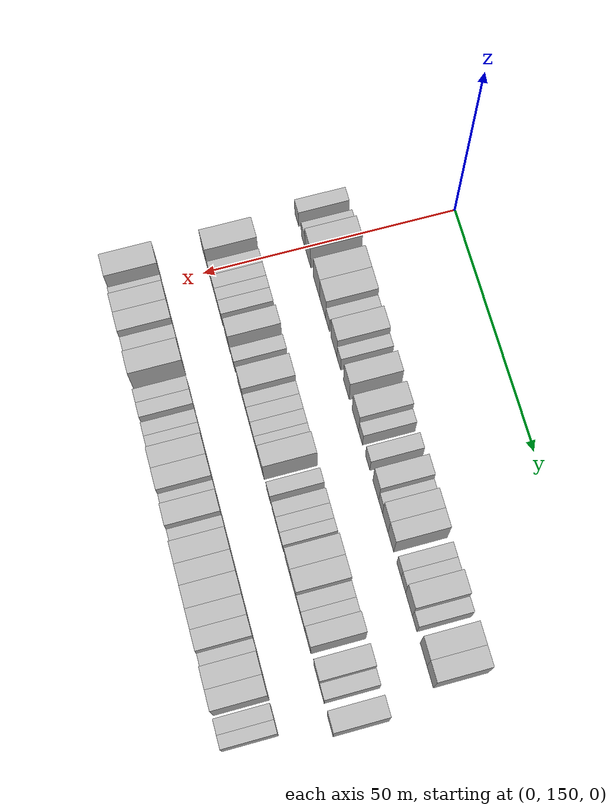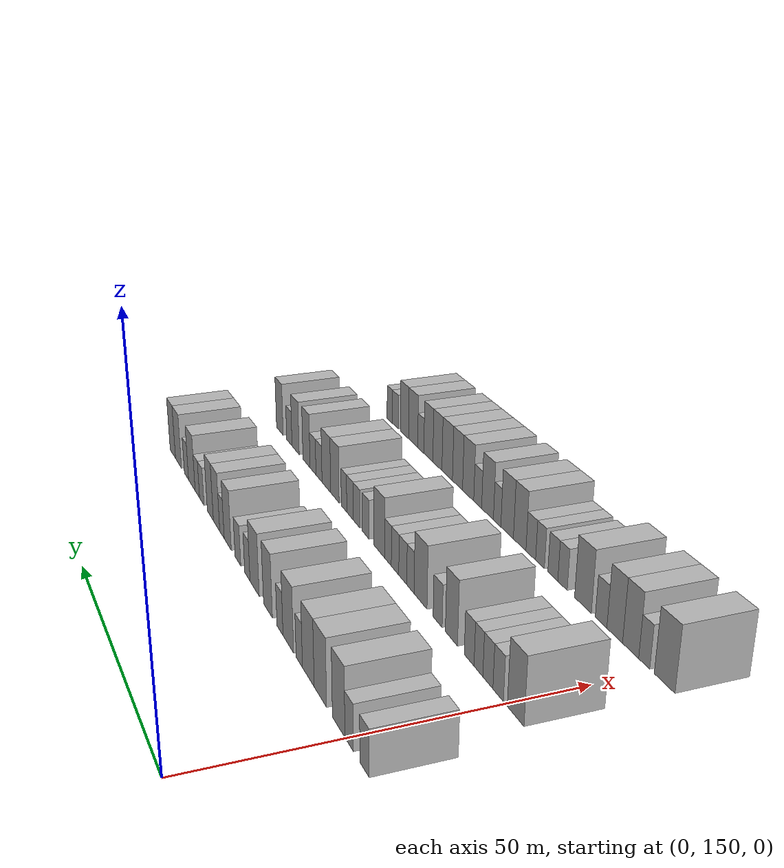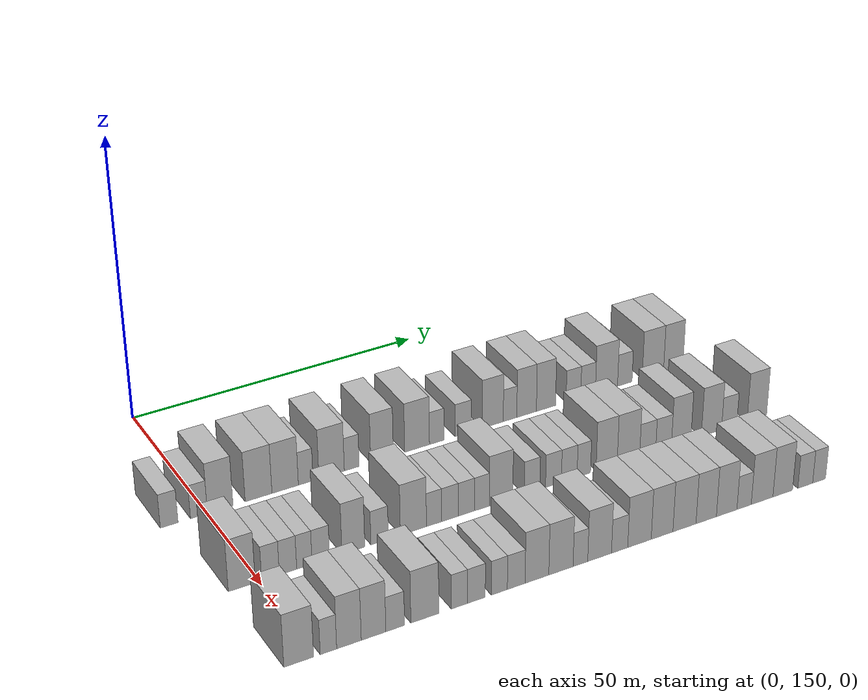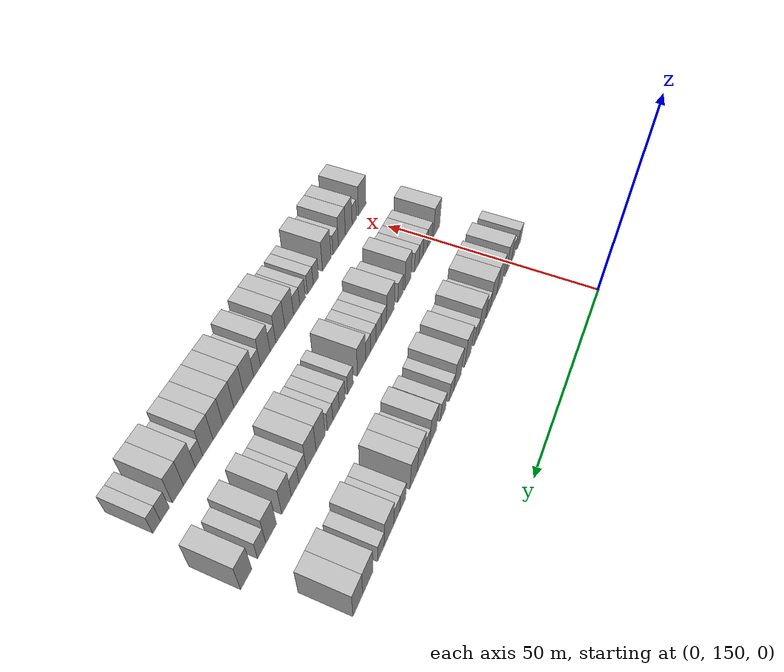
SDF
<sdf version="1.6">
 <world name="default">
  <model name="building_100">
   <static>1</static>
   <pose>25.0000 143.9327 0 0.000000 0.000000 0.000000</pose>
   <link name="link">
    <pose>0 0 3.00 0 0 0</pose>
    <collision name="collision"><geometry><box><size>10.0000 2.8438 6.0000</size></box></geometry></collision>
    <visual name="visual">
     <cast_shadows>0</cast_shadows>
     <geometry><box><size>10.0000 2.8438 6.0000</size></box></geometry>
     <material>
      <script>
       <uri>model://HANNAS_wall/materials/scripts</uri>
       <uri>model://HANNAS_wall/materials/textures</uri>
       <name>vrc/HANNAS_wall</name>
      </script>
     </material>
    </visual>
   </link>
  </model>
  <model name="building_101">
   <static>1</static>
   <pose>25.0000 148.7259 0 0.000000 0.000000 0.000000</pose>
   <link name="link">
    <pose>0 0 3.00 0 0 0</pose>
    <collision name="collision"><geometry><box><size>10.0000 2.7425 6.0000</size></box></geometry></collision>
    <visual name="visual">
     <cast_shadows>0</cast_shadows>
     <geometry><box><size>10.0000 2.7425 6.0000</size></box></geometry>
     <material>
      <script>
       <uri>model://HANNAS_wall/materials/scripts</uri>
       <uri>model://HANNAS_wall/materials/textures</uri>
       <name>vrc/HANNAS_wall</name>
      </script>
     </material>
    </visual>
   </link>
  </model>
  <model name="building_102">
   <static>1</static>
   <pose>25.0000 152.1908 0 0.000000 0.000000 0.000000</pose>
   <link name="link">
    <pose>0 0 4.50 0 0 0</pose>
    <collision name="collision"><geometry><box><size>10.0000 4.1874 9.0000</size></box></geometry></collision>
    <visual name="visual">
     <cast_shadows>0</cast_shadows>
     <geometry><box><size>10.0000 4.1874 9.0000</size></box></geometry>
     <material>
      <script>
       <uri>model://HANNAS_wall/materials/scripts</uri>
       <uri>model://HANNAS_wall/materials/textures</uri>
       <name>vrc/HANNAS_wall</name>
      </script>
     </material>
    </visual>
   </link>
  </model>
  <model name="building_103">
   <static>1</static>
   <pose>25.0000 158.5118 0 0.000000 0.000000 0.000000</pose>
   <link name="link">
    <pose>0 0 4.50 0 0 0</pose>
    <collision name="collision"><geometry><box><size>10.0000 4.4545 9.0000</size></box></geometry></collision>
    <visual name="visual">
     <cast_shadows>0</cast_shadows>
     <geometry><box><size>10.0000 4.4545 9.0000</size></box></geometry>
     <material>
      <script>
       <uri>model://HANNAS_wall/materials/scripts</uri>
       <uri>model://HANNAS_wall/materials/textures</uri>
       <name>vrc/HANNAS_wall</name>
      </script>
     </material>
    </visual>
   </link>
  </model>
  <model name="building_104">
   <static>1</static>
   <pose>25.0000 162.9610 0 0.000000 0.000000 0.000000</pose>
   <link name="link">
    <pose>0 0 4.50 0 0 0</pose>
    <collision name="collision"><geometry><box><size>10.0000 4.4439 9.0000</size></box></geometry></collision>
    <visual name="visual">
     <cast_shadows>0</cast_shadows>
     <geometry><box><size>10.0000 4.4439 9.0000</size></box></geometry>
     <material>
      <script>
       <uri>model://HANNAS_wall/materials/scripts</uri>
       <uri>model://HANNAS_wall/materials/textures</uri>
       <name>vrc/HANNAS_wall</name>
      </script>
     </material>
    </visual>
   </link>
  </model>
  <model name="building_105">
   <static>1</static>
   <pose>25.0000 166.4257 0 0.000000 0.000000 0.000000</pose>
   <link name="link">
    <pose>0 0 3.00 0 0 0</pose>
    <collision name="collision"><geometry><box><size>10.0000 2.4856 6.0000</size></box></geometry></collision>
    <visual name="visual">
     <cast_shadows>0</cast_shadows>
     <geometry><box><size>10.0000 2.4856 6.0000</size></box></geometry>
     <material>
      <script>
       <uri>model://HANNAS_wall/materials/scripts</uri>
       <uri>model://HANNAS_wall/materials/textures</uri>
       <name>vrc/HANNAS_wall</name>
      </script>
     </material>
    </visual>
   </link>
  </model>
  <model name="building_106">
   <static>1</static>
   <pose>25.0000 170.8483 0 0.000000 0.000000 0.000000</pose>
   <link name="link">
    <pose>0 0 4.50 0 0 0</pose>
    <collision name="collision"><geometry><box><size>10.0000 4.3598 9.0000</size></box></geometry></collision>
    <visual name="visual">
     <cast_shadows>0</cast_shadows>
     <geometry><box><size>10.0000 4.3598 9.0000</size></box></geometry>
     <material>
      <script>
       <uri>model://HANNAS_wall/materials/scripts</uri>
       <uri>model://HANNAS_wall/materials/textures</uri>
       <name>vrc/HANNAS_wall</name>
      </script>
     </material>
    </visual>
   </link>
  </model>
  <model name="building_107">
   <static>1</static>
   <pose>25.0000 174.3133 0 0.000000 0.000000 0.000000</pose>
   <link name="link">
    <pose>0 0 3.00 0 0 0</pose>
    <collision name="collision"><geometry><box><size>10.0000 2.5700 6.0000</size></box></geometry></collision>
    <visual name="visual">
     <cast_shadows>0</cast_shadows>
     <geometry><box><size>10.0000 2.5700 6.0000</size></box></geometry>
     <material>
      <script>
       <uri>model://HANNAS_wall/materials/scripts</uri>
       <uri>model://HANNAS_wall/materials/textures</uri>
       <name>vrc/HANNAS_wall</name>
      </script>
     </material>
    </visual>
   </link>
  </model>
  <model name="building_108">
   <static>1</static>
   <pose>25.0000 179.5826 0 0.000000 0.000000 0.000000</pose>
   <link name="link">
    <pose>0 0 4.50 0 0 0</pose>
    <collision name="collision"><geometry><box><size>10.0000 3.9686 9.0000</size></box></geometry></collision>
    <visual name="visual">
     <cast_shadows>0</cast_shadows>
     <geometry><box><size>10.0000 3.9686 9.0000</size></box></geometry>
     <material>
      <script>
       <uri>model://HANNAS_wall/materials/scripts</uri>
       <uri>model://HANNAS_wall/materials/textures</uri>
       <name>vrc/HANNAS_wall</name>
      </script>
     </material>
    </visual>
   </link>
  </model>
  <model name="building_109">
   <static>1</static>
   <pose>25.0000 185.7703 0 0.000000 0.000000 0.000000</pose>
   <link name="link">
    <pose>0 0 4.50 0 0 0</pose>
    <collision name="collision"><geometry><box><size>10.0000 4.4070 9.0000</size></box></geometry></collision>
    <visual name="visual">
     <cast_shadows>0</cast_shadows>
     <geometry><box><size>10.0000 4.4070 9.0000</size></box></geometry>
     <material>
      <script>
       <uri>model://HANNAS_wall/materials/scripts</uri>
       <uri>model://HANNAS_wall/materials/textures</uri>
       <name>vrc/HANNAS_wall</name>
      </script>
     </material>
    </visual>
   </link>
  </model>
  <model name="building_110">
   <static>1</static>
   <pose>25.0000 189.2855 0 0.000000 0.000000 0.000000</pose>
   <link name="link">
    <pose>0 0 3.00 0 0 0</pose>
    <collision name="collision"><geometry><box><size>10.0000 2.6235 6.0000</size></box></geometry></collision>
    <visual name="visual">
     <cast_shadows>0</cast_shadows>
     <geometry><box><size>10.0000 2.6235 6.0000</size></box></geometry>
     <material>
      <script>
       <uri>model://HANNAS_wall/materials/scripts</uri>
       <uri>model://HANNAS_wall/materials/textures</uri>
       <name>vrc/HANNAS_wall</name>
      </script>
     </material>
    </visual>
   </link>
  </model>
  <model name="building_111">
   <static>1</static>
   <pose>25.0000 194.0780 0 0.000000 0.000000 0.000000</pose>
   <link name="link">
    <pose>0 0 3.00 0 0 0</pose>
    <collision name="collision"><geometry><box><size>10.0000 2.9614 6.0000</size></box></geometry></collision>
    <visual name="visual">
     <cast_shadows>0</cast_shadows>
     <geometry><box><size>10.0000 2.9614 6.0000</size></box></geometry>
     <material>
      <script>
       <uri>model://HANNAS_wall/materials/scripts</uri>
       <uri>model://HANNAS_wall/materials/textures</uri>
       <name>vrc/HANNAS_wall</name>
      </script>
     </material>
    </visual>
   </link>
  </model>
  <model name="building_112">
   <static>1</static>
   <pose>25.0000 199.4819 0 0.000000 0.000000 0.000000</pose>
   <link name="link">
    <pose>0 0 4.50 0 0 0</pose>
    <collision name="collision"><geometry><box><size>10.0000 3.8465 9.0000</size></box></geometry></collision>
    <visual name="visual">
     <cast_shadows>0</cast_shadows>
     <geometry><box><size>10.0000 3.8465 9.0000</size></box></geometry>
     <material>
      <script>
       <uri>model://HANNAS_wall/materials/scripts</uri>
       <uri>model://HANNAS_wall/materials/textures</uri>
       <name>vrc/HANNAS_wall</name>
      </script>
     </material>
    </visual>
   </link>
  </model>
  <model name="building_113">
   <static>1</static>
   <pose>25.0000 202.6587 0 0.000000 0.000000 0.000000</pose>
   <link name="link">
    <pose>0 0 3.00 0 0 0</pose>
    <collision name="collision"><geometry><box><size>10.0000 2.5070 6.0000</size></box></geometry></collision>
    <visual name="visual">
     <cast_shadows>0</cast_shadows>
     <geometry><box><size>10.0000 2.5070 6.0000</size></box></geometry>
     <material>
      <script>
       <uri>model://HANNAS_wall/materials/scripts</uri>
       <uri>model://HANNAS_wall/materials/textures</uri>
       <name>vrc/HANNAS_wall</name>
      </script>
     </material>
    </visual>
   </link>
  </model>
  <model name="building_114">
   <static>1</static>
   <pose>25.0000 205.7409 0 0.000000 0.000000 0.000000</pose>
   <link name="link">
    <pose>0 0 4.50 0 0 0</pose>
    <collision name="collision"><geometry><box><size>10.0000 3.6574 9.0000</size></box></geometry></collision>
    <visual name="visual">
     <cast_shadows>0</cast_shadows>
     <geometry><box><size>10.0000 3.6574 9.0000</size></box></geometry>
     <material>
      <script>
       <uri>model://HANNAS_wall/materials/scripts</uri>
       <uri>model://HANNAS_wall/materials/textures</uri>
       <name>vrc/HANNAS_wall</name>
      </script>
     </material>
    </visual>
   </link>
  </model>
  <model name="building_115">
   <static>1</static>
   <pose>25.0000 209.3726 0 0.000000 0.000000 0.000000</pose>
   <link name="link">
    <pose>0 0 4.50 0 0 0</pose>
    <collision name="collision"><geometry><box><size>10.0000 3.6061 9.0000</size></box></geometry></collision>
    <visual name="visual">
     <cast_shadows>0</cast_shadows>
     <geometry><box><size>10.0000 3.6061 9.0000</size></box></geometry>
     <material>
      <script>
       <uri>model://HANNAS_wall/materials/scripts</uri>
       <uri>model://HANNAS_wall/materials/textures</uri>
       <name>vrc/HANNAS_wall</name>
      </script>
     </material>
    </visual>
   </link>
  </model>
  <model name="building_116">
   <static>1</static>
   <pose>25.0000 214.5718 0 0.000000 0.000000 0.000000</pose>
   <link name="link">
    <pose>0 0 3.00 0 0 0</pose>
    <collision name="collision"><geometry><box><size>10.0000 2.7923 6.0000</size></box></geometry></collision>
    <visual name="visual">
     <cast_shadows>0</cast_shadows>
     <geometry><box><size>10.0000 2.7923 6.0000</size></box></geometry>
     <material>
      <script>
       <uri>model://HANNAS_wall/materials/scripts</uri>
       <uri>model://HANNAS_wall/materials/textures</uri>
       <name>vrc/HANNAS_wall</name>
      </script>
     </material>
    </visual>
   </link>
  </model>
  <model name="building_117">
   <static>1</static>
   <pose>25.0000 217.3725 0 0.000000 0.000000 0.000000</pose>
   <link name="link">
    <pose>0 0 3.00 0 0 0</pose>
    <collision name="collision"><geometry><box><size>10.0000 2.8092 6.0000</size></box></geometry></collision>
    <visual name="visual">
     <cast_shadows>0</cast_shadows>
     <geometry><box><size>10.0000 2.8092 6.0000</size></box></geometry>
     <material>
      <script>
       <uri>model://HANNAS_wall/materials/scripts</uri>
       <uri>model://HANNAS_wall/materials/textures</uri>
       <name>vrc/HANNAS_wall</name>
      </script>
     </material>
    </visual>
   </link>
  </model>
  <model name="building_118">
   <static>1</static>
   <pose>25.0000 220.9290 0 0.000000 0.000000 0.000000</pose>
   <link name="link">
    <pose>0 0 4.50 0 0 0</pose>
    <collision name="collision"><geometry><box><size>10.0000 4.3037 9.0000</size></box></geometry></collision>
    <visual name="visual">
     <cast_shadows>0</cast_shadows>
     <geometry><box><size>10.0000 4.3037 9.0000</size></box></geometry>
     <material>
      <script>
       <uri>model://HANNAS_wall/materials/scripts</uri>
       <uri>model://HANNAS_wall/materials/textures</uri>
       <name>vrc/HANNAS_wall</name>
      </script>
     </material>
    </visual>
   </link>
  </model>
  <model name="building_119">
   <static>1</static>
   <pose>25.0000 224.4956 0 0.000000 0.000000 0.000000</pose>
   <link name="link">
    <pose>0 0 3.00 0 0 0</pose>
    <collision name="collision"><geometry><box><size>10.0000 2.8295 6.0000</size></box></geometry></collision>
    <visual name="visual">
     <cast_shadows>0</cast_shadows>
     <geometry><box><size>10.0000 2.8295 6.0000</size></box></geometry>
     <material>
      <script>
       <uri>model://HANNAS_wall/materials/scripts</uri>
       <uri>model://HANNAS_wall/materials/textures</uri>
       <name>vrc/HANNAS_wall</name>
      </script>
     </material>
    </visual>
   </link>
  </model>
  <model name="building_120">
   <static>1</static>
   <pose>25.0000 230.0201 0 0.000000 0.000000 0.000000</pose>
   <link name="link">
    <pose>0 0 4.50 0 0 0</pose>
    <collision name="collision"><geometry><box><size>10.0000 4.2195 9.0000</size></box></geometry></collision>
    <visual name="visual">
     <cast_shadows>0</cast_shadows>
     <geometry><box><size>10.0000 4.2195 9.0000</size></box></geometry>
     <material>
      <script>
       <uri>model://HANNAS_wall/materials/scripts</uri>
       <uri>model://HANNAS_wall/materials/textures</uri>
       <name>vrc/HANNAS_wall</name>
      </script>
     </material>
    </visual>
   </link>
  </model>
  <model name="building_121">
   <static>1</static>
   <pose>25.0000 234.0662 0 0.000000 0.000000 0.000000</pose>
   <link name="link">
    <pose>0 0 4.50 0 0 0</pose>
    <collision name="collision"><geometry><box><size>10.0000 3.8727 9.0000</size></box></geometry></collision>
    <visual name="visual">
     <cast_shadows>0</cast_shadows>
     <geometry><box><size>10.0000 3.8727 9.0000</size></box></geometry>
     <material>
      <script>
       <uri>model://HANNAS_wall/materials/scripts</uri>
       <uri>model://HANNAS_wall/materials/textures</uri>
       <name>vrc/HANNAS_wall</name>
      </script>
     </material>
    </visual>
   </link>
  </model>
  <model name="building_217">
   <static>1</static>
   <pose>44.0000 147.3020 0 0.000000 0.000000 0.000000</pose>
   <link name="link">
    <pose>0 0 4.50 0 0 0</pose>
    <collision name="collision"><geometry><box><size>10.0000 4.2242 9.0000</size></box></geometry></collision>
    <visual name="visual">
     <cast_shadows>0</cast_shadows>
     <geometry><box><size>10.0000 4.2242 9.0000</size></box></geometry>
     <material>
      <script>
       <uri>model://HANNAS_wall/materials/scripts</uri>
       <uri>model://HANNAS_wall/materials/textures</uri>
       <name>vrc/HANNAS_wall</name>
      </script>
     </material>
    </visual>
   </link>
  </model>
  <model name="building_218">
   <static>1</static>
   <pose>44.0000 151.8069 0 0.000000 0.000000 0.000000</pose>
   <link name="link">
    <pose>0 0 3.00 0 0 0</pose>
    <collision name="collision"><geometry><box><size>10.0000 2.7857 6.0000</size></box></geometry></collision>
    <visual name="visual">
     <cast_shadows>0</cast_shadows>
     <geometry><box><size>10.0000 2.7857 6.0000</size></box></geometry>
     <material>
      <script>
       <uri>model://HANNAS_wall/materials/scripts</uri>
       <uri>model://HANNAS_wall/materials/textures</uri>
       <name>vrc/HANNAS_wall</name>
      </script>
     </material>
    </visual>
   </link>
  </model>
  <model name="building_219">
   <static>1</static>
   <pose>44.0000 154.5824 0 0.000000 0.000000 0.000000</pose>
   <link name="link">
    <pose>0 0 3.00 0 0 0</pose>
    <collision name="collision"><geometry><box><size>10.0000 2.7651 6.0000</size></box></geometry></collision>
    <visual name="visual">
     <cast_shadows>0</cast_shadows>
     <geometry><box><size>10.0000 2.7651 6.0000</size></box></geometry>
     <material>
      <script>
       <uri>model://HANNAS_wall/materials/scripts</uri>
       <uri>model://HANNAS_wall/materials/textures</uri>
       <name>vrc/HANNAS_wall</name>
      </script>
     </material>
    </visual>
   </link>
  </model>
  <model name="building_220">
   <static>1</static>
   <pose>44.0000 157.1984 0 0.000000 0.000000 0.000000</pose>
   <link name="link">
    <pose>0 0 3.00 0 0 0</pose>
    <collision name="collision"><geometry><box><size>10.0000 2.4669 6.0000</size></box></geometry></collision>
    <visual name="visual">
     <cast_shadows>0</cast_shadows>
     <geometry><box><size>10.0000 2.4669 6.0000</size></box></geometry>
     <material>
      <script>
       <uri>model://HANNAS_wall/materials/scripts</uri>
       <uri>model://HANNAS_wall/materials/textures</uri>
       <name>vrc/HANNAS_wall</name>
      </script>
     </material>
    </visual>
   </link>
  </model>
  <model name="building_221">
   <static>1</static>
   <pose>44.0000 159.8502 0 0.000000 0.000000 0.000000</pose>
   <link name="link">
    <pose>0 0 3.00 0 0 0</pose>
    <collision name="collision"><geometry><box><size>10.0000 2.8366 6.0000</size></box></geometry></collision>
    <visual name="visual">
     <cast_shadows>0</cast_shadows>
     <geometry><box><size>10.0000 2.8366 6.0000</size></box></geometry>
     <material>
      <script>
       <uri>model://HANNAS_wall/materials/scripts</uri>
       <uri>model://HANNAS_wall/materials/textures</uri>
       <name>vrc/HANNAS_wall</name>
      </script>
     </material>
    </visual>
   </link>
  </model>
  <model name="building_222">
   <static>1</static>
   <pose>44.0000 165.1365 0 0.000000 0.000000 0.000000</pose>
   <link name="link">
    <pose>0 0 4.50 0 0 0</pose>
    <collision name="collision"><geometry><box><size>10.0000 3.7360 9.0000</size></box></geometry></collision>
    <visual name="visual">
     <cast_shadows>0</cast_shadows>
     <geometry><box><size>10.0000 3.7360 9.0000</size></box></geometry>
     <material>
      <script>
       <uri>model://HANNAS_wall/materials/scripts</uri>
       <uri>model://HANNAS_wall/materials/textures</uri>
       <name>vrc/HANNAS_wall</name>
      </script>
     </material>
    </visual>
   </link>
  </model>
  <model name="building_223">
   <static>1</static>
   <pose>44.0000 169.4507 0 0.000000 0.000000 0.000000</pose>
   <link name="link">
    <pose>0 0 3.00 0 0 0</pose>
    <collision name="collision"><geometry><box><size>10.0000 2.8924 6.0000</size></box></geometry></collision>
    <visual name="visual">
     <cast_shadows>0</cast_shadows>
     <geometry><box><size>10.0000 2.8924 6.0000</size></box></geometry>
     <material>
      <script>
       <uri>model://HANNAS_wall/materials/scripts</uri>
       <uri>model://HANNAS_wall/materials/textures</uri>
       <name>vrc/HANNAS_wall</name>
      </script>
     </material>
    </visual>
   </link>
  </model>
  <model name="building_224">
   <static>1</static>
   <pose>44.0000 175.0846 0 0.000000 0.000000 0.000000</pose>
   <link name="link">
    <pose>0 0 4.50 0 0 0</pose>
    <collision name="collision"><geometry><box><size>10.0000 4.3755 9.0000</size></box></geometry></collision>
    <visual name="visual">
     <cast_shadows>0</cast_shadows>
     <geometry><box><size>10.0000 4.3755 9.0000</size></box></geometry>
     <material>
      <script>
       <uri>model://HANNAS_wall/materials/scripts</uri>
       <uri>model://HANNAS_wall/materials/textures</uri>
       <name>vrc/HANNAS_wall</name>
      </script>
     </material>
    </visual>
   </link>
  </model>
  <model name="building_225">
   <static>1</static>
   <pose>44.0000 178.5568 0 0.000000 0.000000 0.000000</pose>
   <link name="link">
    <pose>0 0 3.00 0 0 0</pose>
    <collision name="collision"><geometry><box><size>10.0000 2.5688 6.0000</size></box></geometry></collision>
    <visual name="visual">
     <cast_shadows>0</cast_shadows>
     <geometry><box><size>10.0000 2.5688 6.0000</size></box></geometry>
     <material>
      <script>
       <uri>model://HANNAS_wall/materials/scripts</uri>
       <uri>model://HANNAS_wall/materials/textures</uri>
       <name>vrc/HANNAS_wall</name>
      </script>
     </material>
    </visual>
   </link>
  </model>
  <model name="building_226">
   <static>1</static>
   <pose>44.0000 181.2819 0 0.000000 0.000000 0.000000</pose>
   <link name="link">
    <pose>0 0 3.00 0 0 0</pose>
    <collision name="collision"><geometry><box><size>10.0000 2.8814 6.0000</size></box></geometry></collision>
    <visual name="visual">
     <cast_shadows>0</cast_shadows>
     <geometry><box><size>10.0000 2.8814 6.0000</size></box></geometry>
     <material>
      <script>
       <uri>model://HANNAS_wall/materials/scripts</uri>
       <uri>model://HANNAS_wall/materials/textures</uri>
       <name>vrc/HANNAS_wall</name>
      </script>
     </material>
    </visual>
   </link>
  </model>
  <model name="building_227">
   <static>1</static>
   <pose>44.0000 184.1092 0 0.000000 0.000000 0.000000</pose>
   <link name="link">
    <pose>0 0 3.00 0 0 0</pose>
    <collision name="collision"><geometry><box><size>10.0000 2.7732 6.0000</size></box></geometry></collision>
    <visual name="visual">
     <cast_shadows>0</cast_shadows>
     <geometry><box><size>10.0000 2.7732 6.0000</size></box></geometry>
     <material>
      <script>
       <uri>model://HANNAS_wall/materials/scripts</uri>
       <uri>model://HANNAS_wall/materials/textures</uri>
       <name>vrc/HANNAS_wall</name>
      </script>
     </material>
    </visual>
   </link>
  </model>
  <model name="building_228">
   <static>1</static>
   <pose>44.0000 186.7849 0 0.000000 0.000000 0.000000</pose>
   <link name="link">
    <pose>0 0 3.00 0 0 0</pose>
    <collision name="collision"><geometry><box><size>10.0000 2.5782 6.0000</size></box></geometry></collision>
    <visual name="visual">
     <cast_shadows>0</cast_shadows>
     <geometry><box><size>10.0000 2.5782 6.0000</size></box></geometry>
     <material>
      <script>
       <uri>model://HANNAS_wall/materials/scripts</uri>
       <uri>model://HANNAS_wall/materials/textures</uri>
       <name>vrc/HANNAS_wall</name>
      </script>
     </material>
    </visual>
   </link>
  </model>
  <model name="building_229">
   <static>1</static>
   <pose>44.0000 190.1120 0 0.000000 0.000000 0.000000</pose>
   <link name="link">
    <pose>0 0 4.50 0 0 0</pose>
    <collision name="collision"><geometry><box><size>10.0000 4.0761 9.0000</size></box></geometry></collision>
    <visual name="visual">
     <cast_shadows>0</cast_shadows>
     <geometry><box><size>10.0000 4.0761 9.0000</size></box></geometry>
     <material>
      <script>
       <uri>model://HANNAS_wall/materials/scripts</uri>
       <uri>model://HANNAS_wall/materials/textures</uri>
       <name>vrc/HANNAS_wall</name>
      </script>
     </material>
    </visual>
   </link>
  </model>
  <model name="building_230">
   <static>1</static>
   <pose>44.0000 195.5410 0 0.000000 0.000000 0.000000</pose>
   <link name="link">
    <pose>0 0 3.00 0 0 0</pose>
    <collision name="collision"><geometry><box><size>10.0000 2.7818 6.0000</size></box></geometry></collision>
    <visual name="visual">
     <cast_shadows>0</cast_shadows>
     <geometry><box><size>10.0000 2.7818 6.0000</size></box></geometry>
     <material>
      <script>
       <uri>model://HANNAS_wall/materials/scripts</uri>
       <uri>model://HANNAS_wall/materials/textures</uri>
       <name>vrc/HANNAS_wall</name>
      </script>
     </material>
    </visual>
   </link>
  </model>
  <model name="building_231">
   <static>1</static>
   <pose>44.0000 199.3485 0 0.000000 0.000000 0.000000</pose>
   <link name="link">
    <pose>0 0 3.00 0 0 0</pose>
    <collision name="collision"><geometry><box><size>10.0000 2.8333 6.0000</size></box></geometry></collision>
    <visual name="visual">
     <cast_shadows>0</cast_shadows>
     <geometry><box><size>10.0000 2.8333 6.0000</size></box></geometry>
     <material>
      <script>
       <uri>model://HANNAS_wall/materials/scripts</uri>
       <uri>model://HANNAS_wall/materials/textures</uri>
       <name>vrc/HANNAS_wall</name>
      </script>
     </material>
    </visual>
   </link>
  </model>
  <model name="building_232">
   <static>1</static>
   <pose>44.0000 202.1774 0 0.000000 0.000000 0.000000</pose>
   <link name="link">
    <pose>0 0 3.00 0 0 0</pose>
    <collision name="collision"><geometry><box><size>10.0000 2.8245 6.0000</size></box></geometry></collision>
    <visual name="visual">
     <cast_shadows>0</cast_shadows>
     <geometry><box><size>10.0000 2.8245 6.0000</size></box></geometry>
     <material>
      <script>
       <uri>model://HANNAS_wall/materials/scripts</uri>
       <uri>model://HANNAS_wall/materials/textures</uri>
       <name>vrc/HANNAS_wall</name>
      </script>
     </material>
    </visual>
   </link>
  </model>
  <model name="building_233">
   <static>1</static>
   <pose>44.0000 204.8107 0 0.000000 0.000000 0.000000</pose>
   <link name="link">
    <pose>0 0 3.00 0 0 0</pose>
    <collision name="collision"><geometry><box><size>10.0000 2.4420 6.0000</size></box></geometry></collision>
    <visual name="visual">
     <cast_shadows>0</cast_shadows>
     <geometry><box><size>10.0000 2.4420 6.0000</size></box></geometry>
     <material>
      <script>
       <uri>model://HANNAS_wall/materials/scripts</uri>
       <uri>model://HANNAS_wall/materials/textures</uri>
       <name>vrc/HANNAS_wall</name>
      </script>
     </material>
    </visual>
   </link>
  </model>
  <model name="building_234">
   <static>1</static>
   <pose>44.0000 208.9682 0 0.000000 0.000000 0.000000</pose>
   <link name="link">
    <pose>0 0 4.50 0 0 0</pose>
    <collision name="collision"><geometry><box><size>10.0000 3.8730 9.0000</size></box></geometry></collision>
    <visual name="visual">
     <cast_shadows>0</cast_shadows>
     <geometry><box><size>10.0000 3.8730 9.0000</size></box></geometry>
     <material>
      <script>
       <uri>model://HANNAS_wall/materials/scripts</uri>
       <uri>model://HANNAS_wall/materials/textures</uri>
       <name>vrc/HANNAS_wall</name>
      </script>
     </material>
    </visual>
   </link>
  </model>
  <model name="building_235">
   <static>1</static>
   <pose>44.0000 212.9839 0 0.000000 0.000000 0.000000</pose>
   <link name="link">
    <pose>0 0 4.50 0 0 0</pose>
    <collision name="collision"><geometry><box><size>10.0000 4.1585 9.0000</size></box></geometry></collision>
    <visual name="visual">
     <cast_shadows>0</cast_shadows>
     <geometry><box><size>10.0000 4.1585 9.0000</size></box></geometry>
     <material>
      <script>
       <uri>model://HANNAS_wall/materials/scripts</uri>
       <uri>model://HANNAS_wall/materials/textures</uri>
       <name>vrc/HANNAS_wall</name>
      </script>
     </material>
    </visual>
   </link>
  </model>
  <model name="building_236">
   <static>1</static>
   <pose>44.0000 216.5569 0 0.000000 0.000000 0.000000</pose>
   <link name="link">
    <pose>0 0 3.00 0 0 0</pose>
    <collision name="collision"><geometry><box><size>10.0000 2.9873 6.0000</size></box></geometry></collision>
    <visual name="visual">
     <cast_shadows>0</cast_shadows>
     <geometry><box><size>10.0000 2.9873 6.0000</size></box></geometry>
     <material>
      <script>
       <uri>model://HANNAS_wall/materials/scripts</uri>
       <uri>model://HANNAS_wall/materials/textures</uri>
       <name>vrc/HANNAS_wall</name>
      </script>
     </material>
    </visual>
   </link>
  </model>
  <model name="building_237">
   <static>1</static>
   <pose>44.0000 219.5328 0 0.000000 0.000000 0.000000</pose>
   <link name="link">
    <pose>0 0 3.00 0 0 0</pose>
    <collision name="collision"><geometry><box><size>10.0000 2.9645 6.0000</size></box></geometry></collision>
    <visual name="visual">
     <cast_shadows>0</cast_shadows>
     <geometry><box><size>10.0000 2.9645 6.0000</size></box></geometry>
     <material>
      <script>
       <uri>model://HANNAS_wall/materials/scripts</uri>
       <uri>model://HANNAS_wall/materials/textures</uri>
       <name>vrc/HANNAS_wall</name>
      </script>
     </material>
    </visual>
   </link>
  </model>
  <model name="building_238">
   <static>1</static>
   <pose>44.0000 222.8586 0 0.000000 0.000000 0.000000</pose>
   <link name="link">
    <pose>0 0 4.50 0 0 0</pose>
    <collision name="collision"><geometry><box><size>10.0000 3.6870 9.0000</size></box></geometry></collision>
    <visual name="visual">
     <cast_shadows>0</cast_shadows>
     <geometry><box><size>10.0000 3.6870 9.0000</size></box></geometry>
     <material>
      <script>
       <uri>model://HANNAS_wall/materials/scripts</uri>
       <uri>model://HANNAS_wall/materials/textures</uri>
       <name>vrc/HANNAS_wall</name>
      </script>
     </material>
    </visual>
   </link>
  </model>
  <model name="building_239">
   <static>1</static>
   <pose>44.0000 228.6489 0 0.000000 0.000000 0.000000</pose>
   <link name="link">
    <pose>0 0 4.50 0 0 0</pose>
    <collision name="collision"><geometry><box><size>10.0000 3.8936 9.0000</size></box></geometry></collision>
    <visual name="visual">
     <cast_shadows>0</cast_shadows>
     <geometry><box><size>10.0000 3.8936 9.0000</size></box></geometry>
     <material>
      <script>
       <uri>model://HANNAS_wall/materials/scripts</uri>
       <uri>model://HANNAS_wall/materials/textures</uri>
       <name>vrc/HANNAS_wall</name>
      </script>
     </material>
    </visual>
   </link>
  </model>
  <model name="building_240">
   <static>1</static>
   <pose>44.0000 232.0789 0 0.000000 0.000000 0.000000</pose>
   <link name="link">
    <pose>0 0 3.00 0 0 0</pose>
    <collision name="collision"><geometry><box><size>10.0000 2.9665 6.0000</size></box></geometry></collision>
    <visual name="visual">
     <cast_shadows>0</cast_shadows>
     <geometry><box><size>10.0000 2.9665 6.0000</size></box></geometry>
     <material>
      <script>
       <uri>model://HANNAS_wall/materials/scripts</uri>
       <uri>model://HANNAS_wall/materials/textures</uri>
       <name>vrc/HANNAS_wall</name>
      </script>
     </material>
    </visual>
   </link>
  </model>
  <model name="building_241">
   <static>1</static>
   <pose>44.0000 237.4739 0 0.000000 0.000000 0.000000</pose>
   <link name="link">
    <pose>0 0 4.50 0 0 0</pose>
    <collision name="collision"><geometry><box><size>10.0000 3.8235 9.0000</size></box></geometry></collision>
    <visual name="visual">
     <cast_shadows>0</cast_shadows>
     <geometry><box><size>10.0000 3.8235 9.0000</size></box></geometry>
     <material>
      <script>
       <uri>model://HANNAS_wall/materials/scripts</uri>
       <uri>model://HANNAS_wall/materials/textures</uri>
       <name>vrc/HANNAS_wall</name>
      </script>
     </material>
    </visual>
   </link>
  </model>
  <model name="building_338">
   <static>1</static>
   <pose>63.0000 147.3361 0 0.000000 0.000000 0.000000</pose>
   <link name="link">
    <pose>0 0 4.50 0 0 0</pose>
    <collision name="collision"><geometry><box><size>10.0000 4.4896 9.0000</size></box></geometry></collision>
    <visual name="visual">
     <cast_shadows>0</cast_shadows>
     <geometry><box><size>10.0000 4.4896 9.0000</size></box></geometry>
     <material>
      <script>
       <uri>model://HANNAS_wall/materials/scripts</uri>
       <uri>model://HANNAS_wall/materials/textures</uri>
       <name>vrc/HANNAS_wall</name>
      </script>
     </material>
    </visual>
   </link>
  </model>
  <model name="building_339">
   <static>1</static>
   <pose>63.0000 151.8373 0 0.000000 0.000000 0.000000</pose>
   <link name="link">
    <pose>0 0 3.00 0 0 0</pose>
    <collision name="collision"><geometry><box><size>10.0000 2.5127 6.0000</size></box></geometry></collision>
    <visual name="visual">
     <cast_shadows>0</cast_shadows>
     <geometry><box><size>10.0000 2.5127 6.0000</size></box></geometry>
     <material>
      <script>
       <uri>model://HANNAS_wall/materials/scripts</uri>
       <uri>model://HANNAS_wall/materials/textures</uri>
       <name>vrc/HANNAS_wall</name>
      </script>
     </material>
    </visual>
   </link>
  </model>
  <model name="building_340">
   <static>1</static>
   <pose>63.0000 154.9864 0 0.000000 0.000000 0.000000</pose>
   <link name="link">
    <pose>0 0 4.50 0 0 0</pose>
    <collision name="collision"><geometry><box><size>10.0000 3.7856 9.0000</size></box></geometry></collision>
    <visual name="visual">
     <cast_shadows>0</cast_shadows>
     <geometry><box><size>10.0000 3.7856 9.0000</size></box></geometry>
     <material>
      <script>
       <uri>model://HANNAS_wall/materials/scripts</uri>
       <uri>model://HANNAS_wall/materials/textures</uri>
       <name>vrc/HANNAS_wall</name>
      </script>
     </material>
    </visual>
   </link>
  </model>
  <model name="building_341">
   <static>1</static>
   <pose>63.0000 158.7941 0 0.000000 0.000000 0.000000</pose>
   <link name="link">
    <pose>0 0 4.50 0 0 0</pose>
    <collision name="collision"><geometry><box><size>10.0000 3.8298 9.0000</size></box></geometry></collision>
    <visual name="visual">
     <cast_shadows>0</cast_shadows>
     <geometry><box><size>10.0000 3.8298 9.0000</size></box></geometry>
     <material>
      <script>
       <uri>model://HANNAS_wall/materials/scripts</uri>
       <uri>model://HANNAS_wall/materials/textures</uri>
       <name>vrc/HANNAS_wall</name>
      </script>
     </material>
    </visual>
   </link>
  </model>
  <model name="building_342">
   <static>1</static>
   <pose>63.0000 162.1717 0 0.000000 0.000000 0.000000</pose>
   <link name="link">
    <pose>0 0 3.00 0 0 0</pose>
    <collision name="collision"><geometry><box><size>10.0000 2.9254 6.0000</size></box></geometry></collision>
    <visual name="visual">
     <cast_shadows>0</cast_shadows>
     <geometry><box><size>10.0000 2.9254 6.0000</size></box></geometry>
     <material>
      <script>
       <uri>model://HANNAS_wall/materials/scripts</uri>
       <uri>model://HANNAS_wall/materials/textures</uri>
       <name>vrc/HANNAS_wall</name>
      </script>
     </material>
    </visual>
   </link>
  </model>
  <model name="building_343">
   <static>1</static>
   <pose>63.0000 166.8632 0 0.000000 0.000000 0.000000</pose>
   <link name="link">
    <pose>0 0 4.50 0 0 0</pose>
    <collision name="collision"><geometry><box><size>10.0000 4.4575 9.0000</size></box></geometry></collision>
    <visual name="visual">
     <cast_shadows>0</cast_shadows>
     <geometry><box><size>10.0000 4.4575 9.0000</size></box></geometry>
     <material>
      <script>
       <uri>model://HANNAS_wall/materials/scripts</uri>
       <uri>model://HANNAS_wall/materials/textures</uri>
       <name>vrc/HANNAS_wall</name>
      </script>
     </material>
    </visual>
   </link>
  </model>
  <model name="building_344">
   <static>1</static>
   <pose>63.0000 172.4138 0 0.000000 0.000000 0.000000</pose>
   <link name="link">
    <pose>0 0 3.00 0 0 0</pose>
    <collision name="collision"><geometry><box><size>10.0000 2.6437 6.0000</size></box></geometry></collision>
    <visual name="visual">
     <cast_shadows>0</cast_shadows>
     <geometry><box><size>10.0000 2.6437 6.0000</size></box></geometry>
     <material>
      <script>
       <uri>model://HANNAS_wall/materials/scripts</uri>
       <uri>model://HANNAS_wall/materials/textures</uri>
       <name>vrc/HANNAS_wall</name>
      </script>
     </material>
    </visual>
   </link>
  </model>
  <model name="building_345">
   <static>1</static>
   <pose>63.0000 175.1644 0 0.000000 0.000000 0.000000</pose>
   <link name="link">
    <pose>0 0 3.00 0 0 0</pose>
    <collision name="collision"><geometry><box><size>10.0000 2.8574 6.0000</size></box></geometry></collision>
    <visual name="visual">
     <cast_shadows>0</cast_shadows>
     <geometry><box><size>10.0000 2.8574 6.0000</size></box></geometry>
     <material>
      <script>
       <uri>model://HANNAS_wall/materials/scripts</uri>
       <uri>model://HANNAS_wall/materials/textures</uri>
       <name>vrc/HANNAS_wall</name>
      </script>
     </material>
    </visual>
   </link>
  </model>
  <model name="building_346">
   <static>1</static>
   <pose>63.0000 178.9059 0 0.000000 0.000000 0.000000</pose>
   <link name="link">
    <pose>0 0 3.00 0 0 0</pose>
    <collision name="collision"><geometry><box><size>10.0000 2.6256 6.0000</size></box></geometry></collision>
    <visual name="visual">
     <cast_shadows>0</cast_shadows>
     <geometry><box><size>10.0000 2.6256 6.0000</size></box></geometry>
     <material>
      <script>
       <uri>model://HANNAS_wall/materials/scripts</uri>
       <uri>model://HANNAS_wall/materials/textures</uri>
       <name>vrc/HANNAS_wall</name>
      </script>
     </material>
    </visual>
   </link>
  </model>
  <model name="building_347">
   <static>1</static>
   <pose>63.0000 181.6896 0 0.000000 0.000000 0.000000</pose>
   <link name="link">
    <pose>0 0 3.00 0 0 0</pose>
    <collision name="collision"><geometry><box><size>10.0000 2.9418 6.0000</size></box></geometry></collision>
    <visual name="visual">
     <cast_shadows>0</cast_shadows>
     <geometry><box><size>10.0000 2.9418 6.0000</size></box></geometry>
     <material>
      <script>
       <uri>model://HANNAS_wall/materials/scripts</uri>
       <uri>model://HANNAS_wall/materials/textures</uri>
       <name>vrc/HANNAS_wall</name>
      </script>
     </material>
    </visual>
   </link>
  </model>
  <model name="building_348">
   <static>1</static>
   <pose>63.0000 185.1435 0 0.000000 0.000000 0.000000</pose>
   <link name="link">
    <pose>0 0 4.50 0 0 0</pose>
    <collision name="collision"><geometry><box><size>10.0000 3.9661 9.0000</size></box></geometry></collision>
    <visual name="visual">
     <cast_shadows>0</cast_shadows>
     <geometry><box><size>10.0000 3.9661 9.0000</size></box></geometry>
     <material>
      <script>
       <uri>model://HANNAS_wall/materials/scripts</uri>
       <uri>model://HANNAS_wall/materials/textures</uri>
       <name>vrc/HANNAS_wall</name>
      </script>
     </material>
    </visual>
   </link>
  </model>
  <model name="building_349">
   <static>1</static>
   <pose>63.0000 189.1797 0 0.000000 0.000000 0.000000</pose>
   <link name="link">
    <pose>0 0 4.50 0 0 0</pose>
    <collision name="collision"><geometry><box><size>10.0000 4.1064 9.0000</size></box></geometry></collision>
    <visual name="visual">
     <cast_shadows>0</cast_shadows>
     <geometry><box><size>10.0000 4.1064 9.0000</size></box></geometry>
     <material>
      <script>
       <uri>model://HANNAS_wall/materials/scripts</uri>
       <uri>model://HANNAS_wall/materials/textures</uri>
       <name>vrc/HANNAS_wall</name>
      </script>
     </material>
    </visual>
   </link>
  </model>
  <model name="building_350">
   <static>1</static>
   <pose>63.0000 192.4821 0 0.000000 0.000000 0.000000</pose>
   <link name="link">
    <pose>0 0 3.00 0 0 0</pose>
    <collision name="collision"><geometry><box><size>10.0000 2.4985 6.0000</size></box></geometry></collision>
    <visual name="visual">
     <cast_shadows>0</cast_shadows>
     <geometry><box><size>10.0000 2.4985 6.0000</size></box></geometry>
     <material>
      <script>
       <uri>model://HANNAS_wall/materials/scripts</uri>
       <uri>model://HANNAS_wall/materials/textures</uri>
       <name>vrc/HANNAS_wall</name>
      </script>
     </material>
    </visual>
   </link>
  </model>
  <model name="building_351">
   <static>1</static>
   <pose>63.0000 195.7757 0 0.000000 0.000000 0.000000</pose>
   <link name="link">
    <pose>0 0 4.50 0 0 0</pose>
    <collision name="collision"><geometry><box><size>10.0000 4.0885 9.0000</size></box></geometry></collision>
    <visual name="visual">
     <cast_shadows>0</cast_shadows>
     <geometry><box><size>10.0000 4.0885 9.0000</size></box></geometry>
     <material>
      <script>
       <uri>model://HANNAS_wall/materials/scripts</uri>
       <uri>model://HANNAS_wall/materials/textures</uri>
       <name>vrc/HANNAS_wall</name>
      </script>
     </material>
    </visual>
   </link>
  </model>
  <model name="building_352">
   <static>1</static>
   <pose>63.0000 199.2295 0 0.000000 0.000000 0.000000</pose>
   <link name="link">
    <pose>0 0 3.00 0 0 0</pose>
    <collision name="collision"><geometry><box><size>10.0000 2.8192 6.0000</size></box></geometry></collision>
    <visual name="visual">
     <cast_shadows>0</cast_shadows>
     <geometry><box><size>10.0000 2.8192 6.0000</size></box></geometry>
     <material>
      <script>
       <uri>model://HANNAS_wall/materials/scripts</uri>
       <uri>model://HANNAS_wall/materials/textures</uri>
       <name>vrc/HANNAS_wall</name>
      </script>
     </material>
    </visual>
   </link>
  </model>
  <model name="building_353">
   <static>1</static>
   <pose>63.0000 202.6982 0 0.000000 0.000000 0.000000</pose>
   <link name="link">
    <pose>0 0 4.50 0 0 0</pose>
    <collision name="collision"><geometry><box><size>10.0000 4.1181 9.0000</size></box></geometry></collision>
    <visual name="visual">
     <cast_shadows>0</cast_shadows>
     <geometry><box><size>10.0000 4.1181 9.0000</size></box></geometry>
     <material>
      <script>
       <uri>model://HANNAS_wall/materials/scripts</uri>
       <uri>model://HANNAS_wall/materials/textures</uri>
       <name>vrc/HANNAS_wall</name>
      </script>
     </material>
    </visual>
   </link>
  </model>
  <model name="building_354">
   <static>1</static>
   <pose>63.0000 206.6796 0 0.000000 0.000000 0.000000</pose>
   <link name="link">
    <pose>0 0 4.50 0 0 0</pose>
    <collision name="collision"><geometry><box><size>10.0000 3.8449 9.0000</size></box></geometry></collision>
    <visual name="visual">
     <cast_shadows>0</cast_shadows>
     <geometry><box><size>10.0000 3.8449 9.0000</size></box></geometry>
     <material>
      <script>
       <uri>model://HANNAS_wall/materials/scripts</uri>
       <uri>model://HANNAS_wall/materials/textures</uri>
       <name>vrc/HANNAS_wall</name>
      </script>
     </material>
    </visual>
   </link>
  </model>
  <model name="building_355">
   <static>1</static>
   <pose>63.0000 210.6690 0 0.000000 0.000000 0.000000</pose>
   <link name="link">
    <pose>0 0 4.50 0 0 0</pose>
    <collision name="collision"><geometry><box><size>10.0000 4.1339 9.0000</size></box></geometry></collision>
    <visual name="visual">
     <cast_shadows>0</cast_shadows>
     <geometry><box><size>10.0000 4.1339 9.0000</size></box></geometry>
     <material>
      <script>
       <uri>model://HANNAS_wall/materials/scripts</uri>
       <uri>model://HANNAS_wall/materials/textures</uri>
       <name>vrc/HANNAS_wall</name>
      </script>
     </material>
    </visual>
   </link>
  </model>
  <model name="building_356">
   <static>1</static>
   <pose>63.0000 214.5804 0 0.000000 0.000000 0.000000</pose>
   <link name="link">
    <pose>0 0 4.50 0 0 0</pose>
    <collision name="collision"><geometry><box><size>10.0000 3.6890 9.0000</size></box></geometry></collision>
    <visual name="visual">
     <cast_shadows>0</cast_shadows>
     <geometry><box><size>10.0000 3.6890 9.0000</size></box></geometry>
     <material>
      <script>
       <uri>model://HANNAS_wall/materials/scripts</uri>
       <uri>model://HANNAS_wall/materials/textures</uri>
       <name>vrc/HANNAS_wall</name>
      </script>
     </material>
    </visual>
   </link>
  </model>
  <model name="building_357">
   <static>1</static>
   <pose>63.0000 218.2999 0 0.000000 0.000000 0.000000</pose>
   <link name="link">
    <pose>0 0 4.50 0 0 0</pose>
    <collision name="collision"><geometry><box><size>10.0000 3.7500 9.0000</size></box></geometry></collision>
    <visual name="visual">
     <cast_shadows>0</cast_shadows>
     <geometry><box><size>10.0000 3.7500 9.0000</size></box></geometry>
     <material>
      <script>
       <uri>model://HANNAS_wall/materials/scripts</uri>
       <uri>model://HANNAS_wall/materials/textures</uri>
       <name>vrc/HANNAS_wall</name>
      </script>
     </material>
    </visual>
   </link>
  </model>
  <model name="building_358">
   <static>1</static>
   <pose>63.0000 221.4918 0 0.000000 0.000000 0.000000</pose>
   <link name="link">
    <pose>0 0 3.00 0 0 0</pose>
    <collision name="collision"><geometry><box><size>10.0000 2.6338 6.0000</size></box></geometry></collision>
    <visual name="visual">
     <cast_shadows>0</cast_shadows>
     <geometry><box><size>10.0000 2.6338 6.0000</size></box></geometry>
     <material>
      <script>
       <uri>model://HANNAS_wall/materials/scripts</uri>
       <uri>model://HANNAS_wall/materials/textures</uri>
       <name>vrc/HANNAS_wall</name>
      </script>
     </material>
    </visual>
   </link>
  </model>
  <model name="building_359">
   <static>1</static>
   <pose>63.0000 224.8185 0 0.000000 0.000000 0.000000</pose>
   <link name="link">
    <pose>0 0 4.50 0 0 0</pose>
    <collision name="collision"><geometry><box><size>10.0000 4.0196 9.0000</size></box></geometry></collision>
    <visual name="visual">
     <cast_shadows>0</cast_shadows>
     <geometry><box><size>10.0000 4.0196 9.0000</size></box></geometry>
     <material>
      <script>
       <uri>model://HANNAS_wall/materials/scripts</uri>
       <uri>model://HANNAS_wall/materials/textures</uri>
       <name>vrc/HANNAS_wall</name>
      </script>
     </material>
    </visual>
   </link>
  </model>
  <model name="building_360">
   <static>1</static>
   <pose>63.0000 228.6709 0 0.000000 0.000000 0.000000</pose>
   <link name="link">
    <pose>0 0 4.50 0 0 0</pose>
    <collision name="collision"><geometry><box><size>10.0000 3.6852 9.0000</size></box></geometry></collision>
    <visual name="visual">
     <cast_shadows>0</cast_shadows>
     <geometry><box><size>10.0000 3.6852 9.0000</size></box></geometry>
     <material>
      <script>
       <uri>model://HANNAS_wall/materials/scripts</uri>
       <uri>model://HANNAS_wall/materials/textures</uri>
       <name>vrc/HANNAS_wall</name>
      </script>
     </material>
    </visual>
   </link>
  </model>
  <model name="building_361">
   <static>1</static>
   <pose>63.0000 232.9182 0 0.000000 0.000000 0.000000</pose>
   <link name="link">
    <pose>0 0 3.00 0 0 0</pose>
    <collision name="collision"><geometry><box><size>10.0000 2.8094 6.0000</size></box></geometry></collision>
    <visual name="visual">
     <cast_shadows>0</cast_shadows>
     <geometry><box><size>10.0000 2.8094 6.0000</size></box></geometry>
     <material>
      <script>
       <uri>model://HANNAS_wall/materials/scripts</uri>
       <uri>model://HANNAS_wall/materials/textures</uri>
       <name>vrc/HANNAS_wall</name>
      </script>
     </material>
    </visual>
   </link>
  </model>
  <model name="building_362">
   <static>1</static>
   <pose>63.0000 235.5453 0 0.000000 0.000000 0.000000</pose>
   <link name="link">
    <pose>0 0 3.00 0 0 0</pose>
    <collision name="collision"><geometry><box><size>10.0000 2.4447 6.0000</size></box></geometry></collision>
    <visual name="visual">
     <cast_shadows>0</cast_shadows>
     <geometry><box><size>10.0000 2.4447 6.0000</size></box></geometry>
     <material>
      <script>
       <uri>model://HANNAS_wall/materials/scripts</uri>
       <uri>model://HANNAS_wall/materials/textures</uri>
       <name>vrc/HANNAS_wall</name>
      </script>
     </material>
    </visual>
   </link>
  </model>
 </world>
</sdf>
